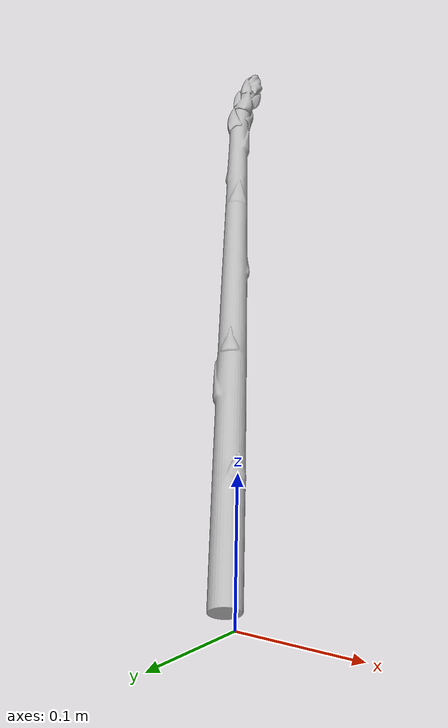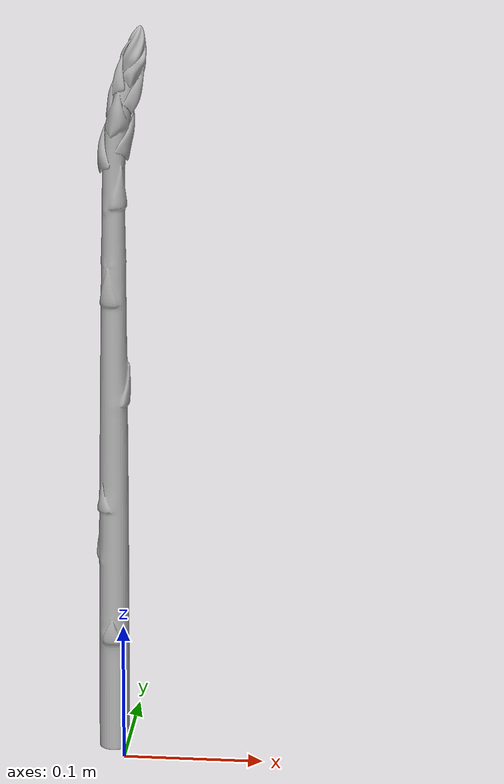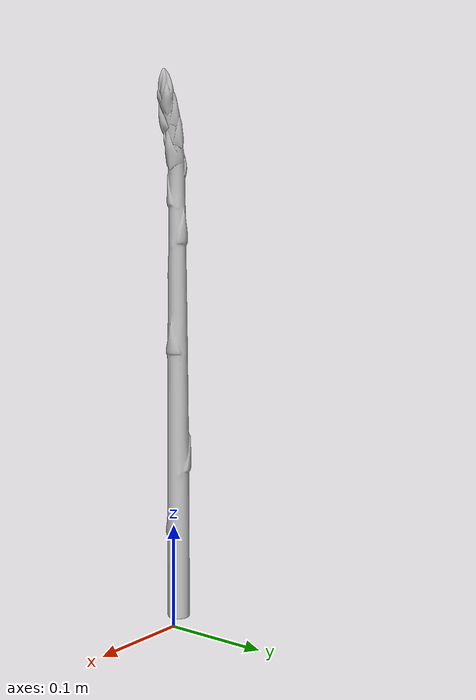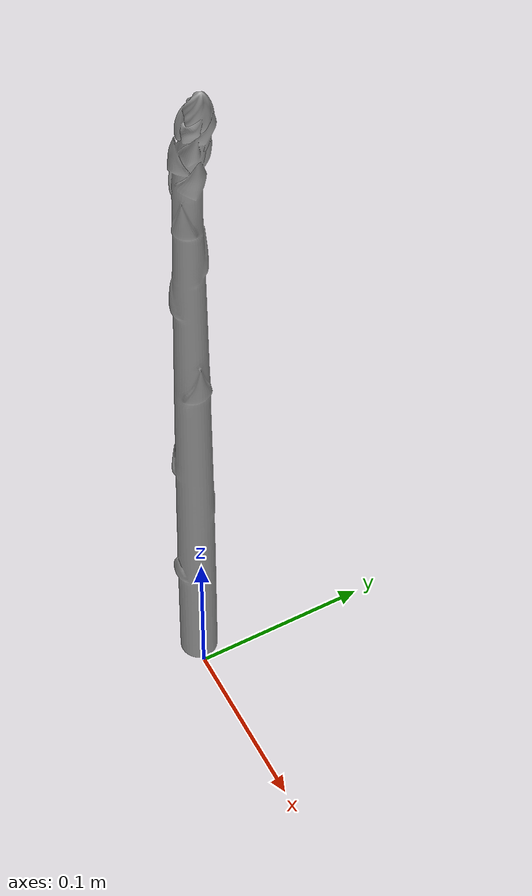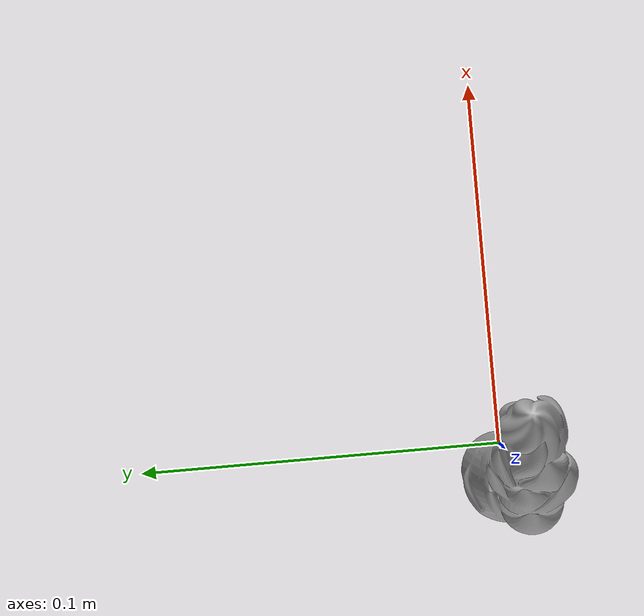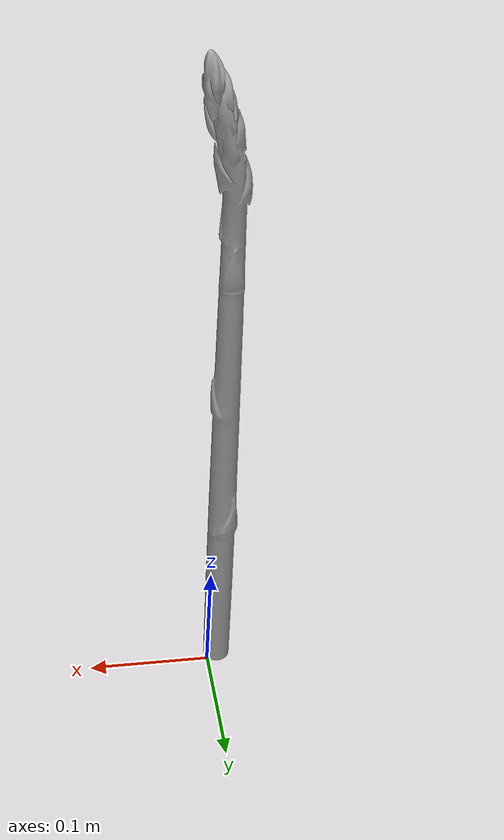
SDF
<?xml version="1.0"?>
<sdf version="1.6">
  <model name="asparagus">
    <static>true</static>
    <link name="link">
      <collision name="collision">
        <geometry>
          <mesh>
            <scale>0.0254 0.0254 0.0254</scale>
            <uri>model://Asparagus/meshes/asparagus.obj</uri>
          </mesh>
        </geometry>
      </collision>
      <visual name="visual">
        <geometry>
          <mesh>
            <scale>0.0254 0.0254 0.0254</scale>
            <uri>model://Asparagus/meshes/asparagus.obj</uri>
          </mesh>
        </geometry>
      </visual>
    </link>
  </model>
</sdf>
